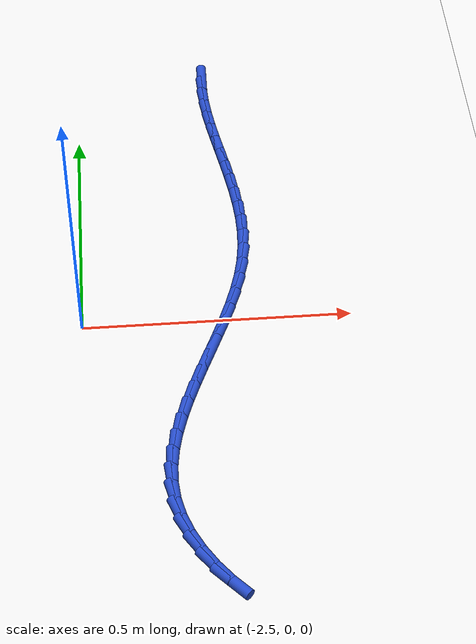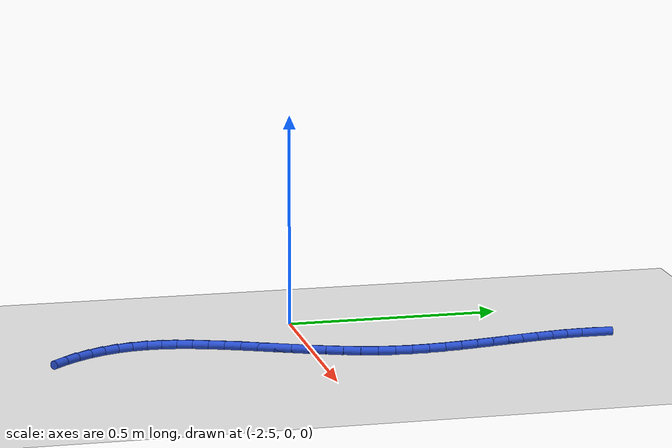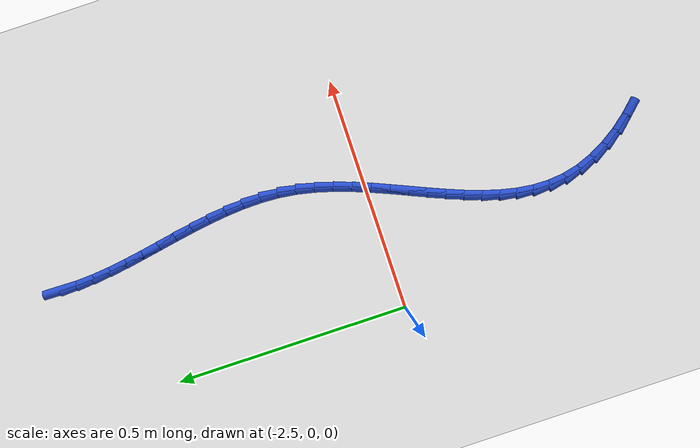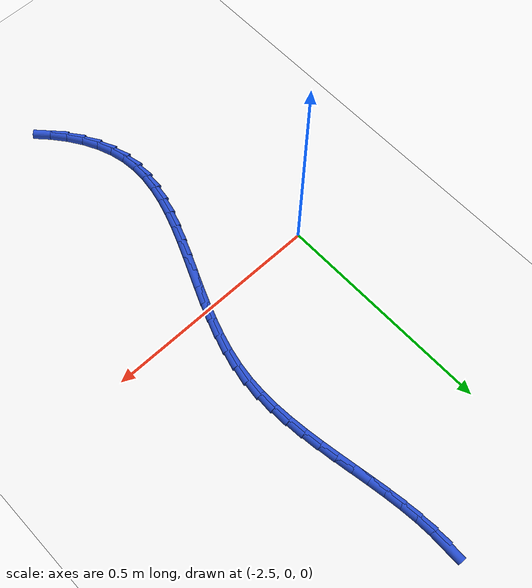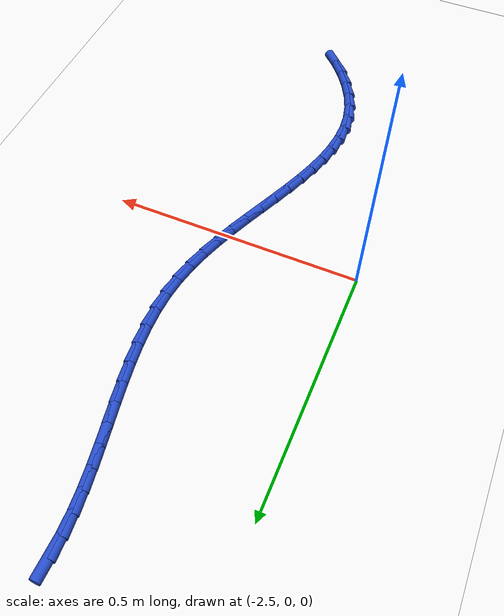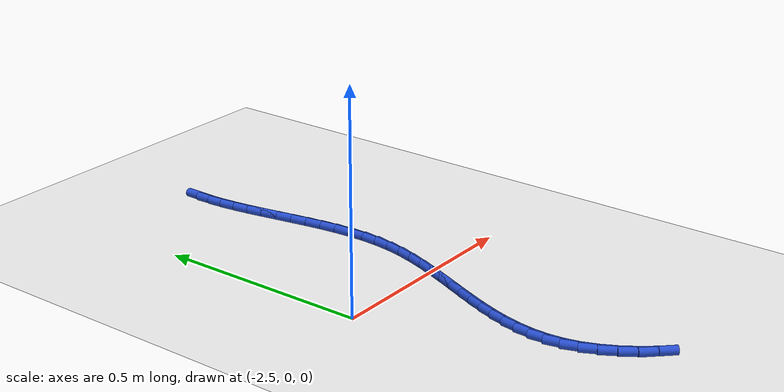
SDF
<sdf version="1.6">
 <world name="default">
  <model name="ground_plane">
   <static>1</static>
   <link name="link">
    <collision name="collision">
     <geometry><plane><normal>0 0 1</normal><size>100 100</size></plane></geometry>
     <surface><friction><ode><mu>100</mu><mu2>50</mu2></ode></friction></surface>
    </collision>
    <visual name="visual">
     <cast_shadows>0</cast_shadows>
     <geometry><plane><normal>0 0 1</normal><size>100 100</size></plane></geometry>
     <material>
      <script><uri>file://media/materials/scripts/gazebo.material</uri><name>Gazebo/WhiteGlow</name></script>
     </material>
    </visual>
   </link>
  </model>
  <model name="line">
   <link name="link_88">
    <pose>-2.2371881548849935 0.6706898067154 0.01 0 1.57 1.5517424490350922</pose>
    <collision name="collision">
     <geometry><cylinder><radius>0.01</radius><length>0.08</length></cylinder></geometry>
    </collision>
    <visual name="visual">
     <material>
      <script><name>Gazebo/Blue</name><uri>file://media/materials/scripts/gazebo.material</uri></script>
     </material>
     <geometry><cylinder><radius>0.01</radius><length>0.08</length></cylinder></geometry>
    </visual>
   </link>
   <link name="link_89">
    <pose>-2.237861564137411 0.6353517109675242 0.01 0 1.57 -1.5222661975846603</pose>
    <collision name="collision">
     <geometry><cylinder><radius>0.01</radius><length>0.08</length></cylinder></geometry>
    </collision>
    <visual name="visual">
     <material>
      <script><name>Gazebo/Blue</name><uri>file://media/materials/scripts/gazebo.material</uri></script>
     </material>
     <geometry><cylinder><radius>0.01</radius><length>0.08</length></cylinder></geometry>
    </visual>
   </link>
   <link name="link_90">
    <pose>-2.236108862840295 0.5992643331328418 0.01 0 1.57 -1.469938153439032</pose>
    <collision name="collision">
     <geometry><cylinder><radius>0.01</radius><length>0.08</length></cylinder></geometry>
    </collision>
    <visual name="visual">
     <material>
      <script><name>Gazebo/Blue</name><uri>file://media/materials/scripts/gazebo.material</uri></script>
     </material>
     <geometry><cylinder><radius>0.01</radius><length>0.08</length></cylinder></geometry>
    </visual>
   </link>
   <link name="link_91">
    <pose>-2.2323896859398484 0.5625141395951193 0.01 0 1.57 -1.431692461719245</pose>
    <collision name="collision">
     <geometry><cylinder><radius>0.01</radius><length>0.08</length></cylinder></geometry>
    </collision>
    <visual name="visual">
     <material>
      <script><name>Gazebo/Blue</name><uri>file://media/materials/scripts/gazebo.material</uri></script>
     </material>
     <geometry><cylinder><radius>0.01</radius><length>0.08</length></cylinder></geometry>
    </visual>
   </link>
   <link name="link_92">
    <pose>-2.227163668382276 0.5251875967381237 0.01 0 1.57 -1.4064071158516414</pose>
    <collision name="collision">
     <geometry><cylinder><radius>0.01</radius><length>0.08</length></cylinder></geometry>
    </collision>
    <visual name="visual">
     <material>
      <script><name>Gazebo/Blue</name><uri>file://media/materials/scripts/gazebo.material</uri></script>
     </material>
     <geometry><cylinder><radius>0.01</radius><length>0.08</length></cylinder></geometry>
    </visual>
   </link>
   <link name="link_93">
    <pose>-2.2208904451137803 0.48737117094562227 0.01 0 1.57 -1.393179315303691</pose>
    <collision name="collision">
     <geometry><cylinder><radius>0.01</radius><length>0.08</length></cylinder></geometry>
    </collision>
    <visual name="visual">
     <material>
      <script><name>Gazebo/Blue</name><uri>file://media/materials/scripts/gazebo.material</uri></script>
     </material>
     <geometry><cylinder><radius>0.01</radius><length>0.08</length></cylinder></geometry>
    </visual>
   </link>
   <link name="link_94">
    <pose>-2.2140296510805655 0.4491513286013816 0.01 0 1.57 -1.3913939909278263</pose>
    <collision name="collision">
     <geometry><cylinder><radius>0.01</radius><length>0.08</length></cylinder></geometry>
    </collision>
    <visual name="visual">
     <material>
      <script><name>Gazebo/Blue</name><uri>file://media/materials/scripts/gazebo.material</uri></script>
     </material>
     <geometry><cylinder><radius>0.01</radius><length>0.08</length></cylinder></geometry>
    </visual>
   </link>
   <link name="link_95">
    <pose>-2.2070409212288356 0.4106145360891679 0.01 0 1.57 -1.4007371117926035</pose>
    <collision name="collision">
     <geometry><cylinder><radius>0.01</radius><length>0.08</length></cylinder></geometry>
    </collision>
    <visual name="visual">
     <material>
      <script><name>Gazebo/Blue</name><uri>file://media/materials/scripts/gazebo.material</uri></script>
     </material>
     <geometry><cylinder><radius>0.01</radius><length>0.08</length></cylinder></geometry>
    </visual>
   </link>
   <link name="link_96">
    <pose>-2.2003838905047948 0.37184725979274896 0.01 0 1.57 -1.4211775087757241</pose>
    <collision name="collision">
     <geometry><cylinder><radius>0.01</radius><length>0.08</length></cylinder></geometry>
    </collision>
    <visual name="visual">
     <material>
      <script><name>Gazebo/Blue</name><uri>file://media/materials/scripts/gazebo.material</uri></script>
     </material>
     <geometry><cylinder><radius>0.01</radius><length>0.08</length></cylinder></geometry>
    </visual>
   </link>
   <link name="link_97">
    <pose>-2.1945181938546443 0.3329359660958911 0.01 0 1.57 -1.4529243243373067</pose>
    <collision name="collision">
     <geometry><cylinder><radius>0.01</radius><length>0.08</length></cylinder></geometry>
    </collision>
    <visual name="visual">
     <material>
      <script><name>Gazebo/Blue</name><uri>file://media/materials/scripts/gazebo.material</uri></script>
     </material>
     <geometry><cylinder><radius>0.01</radius><length>0.08</length></cylinder></geometry>
    </visual>
   </link>
   <link name="link_98">
    <pose>-2.1899034662245906 0.29396712138236075 0.01 0 1.57 -1.4963545582901931</pose>
    <collision name="collision">
     <geometry><cylinder><radius>0.01</radius><length>0.08</length></cylinder></geometry>
    </collision>
    <visual name="visual">
     <material>
      <script><name>Gazebo/Blue</name><uri>file://media/materials/scripts/gazebo.material</uri></script>
     </material>
     <geometry><cylinder><radius>0.01</radius><length>0.08</length></cylinder></geometry>
    </visual>
   </link>
   <link name="link_99">
    <pose>-2.186999342560836 0.2550271920359256 0.01 0 1.57 -1.5518959813237057</pose>
    <collision name="collision">
     <geometry><cylinder><radius>0.01</radius><length>0.08</length></cylinder></geometry>
    </collision>
    <visual name="visual">
     <material>
      <script><name>Gazebo/Blue</name><uri>file://media/materials/scripts/gazebo.material</uri></script>
     </material>
     <geometry><cylinder><radius>0.01</radius><length>0.08</length></cylinder></geometry>
    </visual>
   </link>
   <link name="link_100">
    <pose>-2.1862654578095837 0.21620264444035198 0.01 0 1.57 1.5217456822687119</pose>
    <collision name="collision">
     <geometry><cylinder><radius>0.01</radius><length>0.08</length></cylinder></geometry>
    </collision>
    <visual name="visual">
     <material>
      <script><name>Gazebo/Blue</name><uri>file://media/materials/scripts/gazebo.material</uri></script>
     </material>
     <geometry><cylinder><radius>0.01</radius><length>0.08</length></cylinder></geometry>
    </visual>
   </link>
   <link name="link_101">
    <pose>-2.1881614469170394 0.17757994497940627 0.01 0 1.57 1.4418956697138305</pose>
    <collision name="collision">
     <geometry><cylinder><radius>0.01</radius><length>0.08</length></cylinder></geometry>
    </collision>
    <visual name="visual">
     <material>
      <script><name>Gazebo/Blue</name><uri>file://media/materials/scripts/gazebo.material</uri></script>
     </material>
     <geometry><cylinder><radius>0.01</radius><length>0.08</length></cylinder></geometry>
    </visual>
   </link>
   <link name="link_102">
    <pose>-2.193130536105882 0.13924392973470187 0.01 0 1.57 1.3623976975358434</pose>
    <collision name="collision">
     <geometry><cylinder><radius>0.01</radius><length>0.08</length></cylinder></geometry>
    </collision>
    <visual name="visual">
     <material>
      <script><name>Gazebo/Blue</name><uri>file://media/materials/scripts/gazebo.material</uri></script>
     </material>
     <geometry><cylinder><radius>0.01</radius><length>0.08</length></cylinder></geometry>
    </visual>
   </link>
   <link name="link_103">
    <pose>-2.2011682523094027 0.1012349532585633 0.01 0 1.57 1.296362525030764</pose>
    <collision name="collision">
     <geometry><cylinder><radius>0.01</radius><length>0.08</length></cylinder></geometry>
    </collision>
    <visual name="visual">
     <material>
      <script><name>Gazebo/Blue</name><uri>file://media/materials/scripts/gazebo.material</uri></script>
     </material>
     <geometry><cylinder><radius>0.01</radius><length>0.08</length></cylinder></geometry>
    </visual>
   </link>
   <link name="link_104">
    <pose>-2.2117794914229405 0.06354462305501471 0.01 0 1.57 1.2441475875786239</pose>
    <collision name="collision">
     <geometry><cylinder><radius>0.01</radius><length>0.08</length></cylinder></geometry>
    </collision>
    <visual name="visual">
     <material>
      <script><name>Gazebo/Blue</name><uri>file://media/materials/scripts/gazebo.material</uri></script>
     </material>
     <geometry><cylinder><radius>0.01</radius><length>0.08</length></cylinder></geometry>
    </visual>
   </link>
   <link name="link_105">
    <pose>-2.224444131692346 0.02616206097904128 0.01 0 1.57 1.2051690467677534</pose>
    <collision name="collision">
     <geometry><cylinder><radius>0.01</radius><length>0.08</length></cylinder></geometry>
    </collision>
    <visual name="visual">
     <material>
      <script><name>Gazebo/Blue</name><uri>file://media/materials/scripts/gazebo.material</uri></script>
     </material>
     <geometry><cylinder><radius>0.01</radius><length>0.08</length></cylinder></geometry>
    </visual>
   </link>
   <link name="link_106">
    <pose>-2.2386420513634686 -0.010923611114372787 0.01 0 1.57 1.1788360113711023</pose>
    <collision name="collision">
     <geometry><cylinder><radius>0.01</radius><length>0.08</length></cylinder></geometry>
    </collision>
    <visual name="visual">
     <material>
      <script><name>Gazebo/Blue</name><uri>file://media/materials/scripts/gazebo.material</uri></script>
     </material>
     <geometry><cylinder><radius>0.01</radius><length>0.08</length></cylinder></geometry>
    </visual>
   </link>
   <link name="link_107">
    <pose>-2.253853128682156 -0.047723271370240794 0.01 0 1.57 1.1647313853836323</pose>
    <collision name="collision">
     <geometry><cylinder><radius>0.01</radius><length>0.08</length></cylinder></geometry>
    </collision>
    <visual name="visual">
     <material>
      <script><name>Gazebo/Blue</name><uri>file://media/materials/scripts/gazebo.material</uri></script>
     </material>
     <geometry><cylinder><radius>0.01</radius><length>0.08</length></cylinder></geometry>
    </visual>
   </link>
   <link name="link_108">
    <pose>-2.269557241894257 -0.08424779793357856 0.01 0 1.57 1.1627190139014392</pose>
    <collision name="collision">
     <geometry><cylinder><radius>0.01</radius><length>0.08</length></cylinder></geometry>
    </collision>
    <visual name="visual">
     <material>
      <script><name>Gazebo/Blue</name><uri>file://media/materials/scripts/gazebo.material</uri></script>
     </material>
     <geometry><cylinder><radius>0.01</radius><length>0.08</length></cylinder></geometry>
    </visual>
   </link>
   <link name="link_109">
    <pose>-2.285234269245621 -0.12050806894940094 0.01 0 1.57 1.1730048747664108</pose>
    <collision name="collision">
     <geometry><cylinder><radius>0.01</radius><length>0.08</length></cylinder></geometry>
    </collision>
    <visual name="visual">
     <material>
      <script><name>Gazebo/Blue</name><uri>file://media/materials/scripts/gazebo.material</uri></script>
     </material>
     <geometry><cylinder><radius>0.01</radius><length>0.08</length></cylinder></geometry>
    </visual>
   </link>
   <link name="link_110">
    <pose>-2.300364088982098 -0.15651496256272307 0.01 0 1.57 1.1961674117747965</pose>
    <collision name="collision">
     <geometry><cylinder><radius>0.01</radius><length>0.08</length></cylinder></geometry>
    </collision>
    <visual name="visual">
     <material>
      <script><name>Gazebo/Blue</name><uri>file://media/materials/scripts/gazebo.material</uri></script>
     </material>
     <geometry><cylinder><radius>0.01</radius><length>0.08</length></cylinder></geometry>
    </visual>
   </link>
   <link name="link_111">
    <pose>-2.314426579349536 -0.19227935691855969 0.01 0 1.57 1.2331548525719178</pose>
    <collision name="collision">
     <geometry><cylinder><radius>0.01</radius><length>0.08</length></cylinder></geometry>
    </collision>
    <visual name="visual">
     <material>
      <script><name>Gazebo/Blue</name><uri>file://media/materials/scripts/gazebo.material</uri></script>
     </material>
     <geometry><cylinder><radius>0.01</radius><length>0.08</length></cylinder></geometry>
    </visual>
   </link>
   <link name="link_112">
    <pose>-2.326901618593785 -0.22781213016192675 0.01 0 1.57 1.285225184140918</pose>
    <collision name="collision">
     <geometry><cylinder><radius>0.01</radius><length>0.08</length></cylinder></geometry>
    </collision>
    <visual name="visual">
     <material>
      <script><name>Gazebo/Blue</name><uri>file://media/materials/scripts/gazebo.material</uri></script>
     </material>
     <geometry><cylinder><radius>0.01</radius><length>0.08</length></cylinder></geometry>
    </visual>
   </link>
   <link name="link_113">
    <pose>-2.337269084960692 -0.2631241604378374 0.01 0 1.57 1.3537761026716495</pose>
    <collision name="collision">
     <geometry><cylinder><radius>0.01</radius><length>0.08</length></cylinder></geometry>
    </collision>
    <visual name="visual">
     <material>
      <script><name>Gazebo/Blue</name><uri>file://media/materials/scripts/gazebo.material</uri></script>
     </material>
     <geometry><cylinder><radius>0.01</radius><length>0.08</length></cylinder></geometry>
    </visual>
   </link>
   <link name="link_114">
    <pose>-2.345008856696107 -0.2982263258913075 0.01 0 1.57 1.439984932277017</pose>
    <collision name="collision">
     <geometry><cylinder><radius>0.01</radius><length>0.08</length></cylinder></geometry>
    </collision>
    <visual name="visual">
     <material>
      <script><name>Gazebo/Blue</name><uri>file://media/materials/scripts/gazebo.material</uri></script>
     </material>
     <geometry><cylinder><radius>0.01</radius><length>0.08</length></cylinder></geometry>
    </visual>
   </link>
   <link name="link_115">
    <pose>-2.34960081204588 -0.333129504667352 0.01 0 1.57 1.5441854318118802</pose>
    <collision name="collision">
     <geometry><cylinder><radius>0.01</radius><length>0.08</length></cylinder></geometry>
    </collision>
    <visual name="visual">
     <material>
      <script><name>Gazebo/Blue</name><uri>file://media/materials/scripts/gazebo.material</uri></script>
     </material>
     <geometry><cylinder><radius>0.01</radius><length>0.08</length></cylinder></geometry>
    </visual>
   </link>
   <link name="link_116">
    <pose>-2.3505248292558587 -0.3678445749109858 0.01 0 1.57 -1.4765699098424565</pose>
    <collision name="collision">
     <geometry><cylinder><radius>0.01</radius><length>0.08</length></cylinder></geometry>
    </collision>
    <visual name="visual">
     <material>
      <script><name>Gazebo/Blue</name><uri>file://media/materials/scripts/gazebo.material</uri></script>
     </material>
     <geometry><cylinder><radius>0.01</radius><length>0.08</length></cylinder></geometry>
    </visual>
   </link>
   <link name="link_117">
    <pose>-2.3472607865718924 -0.4023824147672239 0.01 0 1.57 -1.3434033467445043</pose>
    <collision name="collision">
     <geometry><cylinder><radius>0.01</radius><length>0.08</length></cylinder></geometry>
    </collision>
    <visual name="visual">
     <material>
      <script><name>Gazebo/Blue</name><uri>file://media/materials/scripts/gazebo.material</uri></script>
     </material>
     <geometry><cylinder><radius>0.01</radius><length>0.08</length></cylinder></geometry>
    </visual>
   </link>
   <link name="link_118">
    <pose>-2.3393094471111455 -0.4367450259249595 0.01 0 1.57 -1.213972527080923</pose>
    <collision name="collision">
     <geometry><cylinder><radius>0.01</radius><length>0.08</length></cylinder></geometry>
    </collision>
    <visual name="visual">
     <material>
      <script><name>Gazebo/Blue</name><uri>file://media/materials/scripts/gazebo.material</uri></script>
     </material>
     <geometry><cylinder><radius>0.01</radius><length>0.08</length></cylinder></geometry>
    </visual>
   </link>
   <link name="link_119">
    <pose>-2.3266382321497794 -0.4707360717347873 0.01 0 1.57 -1.0987456709822203</pose>
    <collision name="collision">
     <geometry><cylinder><radius>0.01</radius><length>0.08</length></cylinder></geometry>
    </collision>
    <visual name="visual">
     <material>
      <script><name>Gazebo/Blue</name><uri>file://media/materials/scripts/gazebo.material</uri></script>
     </material>
     <geometry><cylinder><radius>0.01</radius><length>0.08</length></cylinder></geometry>
    </visual>
   </link>
   <link name="link_120">
    <pose>-2.30967373785836 -0.503964057734692 0.01 0 1.57 -0.9950919365242794</pose>
    <collision name="collision">
     <geometry><cylinder><radius>0.01</radius><length>0.08</length></cylinder></geometry>
    </collision>
    <visual name="visual">
     <material>
      <script><name>Gazebo/Blue</name><uri>file://media/materials/scripts/gazebo.material</uri></script>
     </material>
     <geometry><cylinder><radius>0.01</radius><length>0.08</length></cylinder></geometry>
    </visual>
   </link>
   <link name="link_121">
    <pose>-2.288861948503241 -0.536029249163789 0.01 0 1.57 -0.8998455732756346</pose>
    <collision name="collision">
     <geometry><cylinder><radius>0.01</radius><length>0.08</length></cylinder></geometry>
    </collision>
    <visual name="visual">
     <material>
      <script><name>Gazebo/Blue</name><uri>file://media/materials/scripts/gazebo.material</uri></script>
     </material>
     <geometry><cylinder><radius>0.01</radius><length>0.08</length></cylinder></geometry>
    </visual>
   </link>
   <link name="link_122">
    <pose>-2.2646488483507756 -0.5665319112611934 0.01 0 1.57 -0.8100207264451001</pose>
    <collision name="collision">
     <geometry><cylinder><radius>0.01</radius><length>0.08</length></cylinder></geometry>
    </collision>
    <visual name="visual">
     <material>
      <script><name>Gazebo/Blue</name><uri>file://media/materials/scripts/gazebo.material</uri></script>
     </material>
     <geometry><cylinder><radius>0.01</radius><length>0.08</length></cylinder></geometry>
    </visual>
   </link>
  </model>
 </world>
</sdf>
